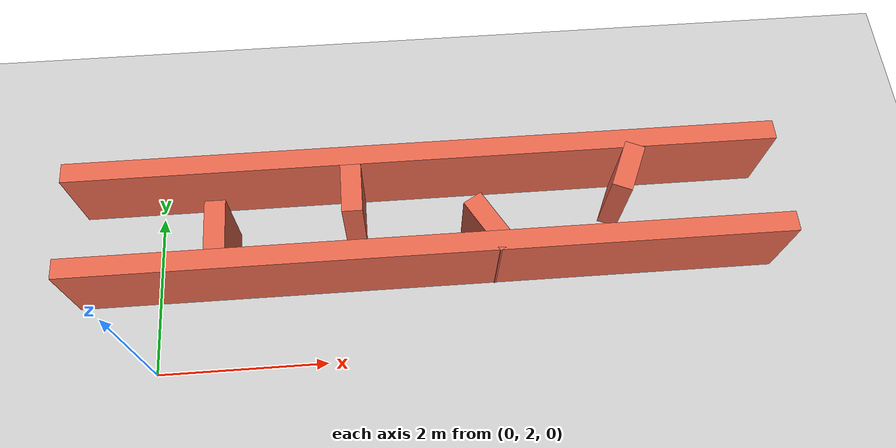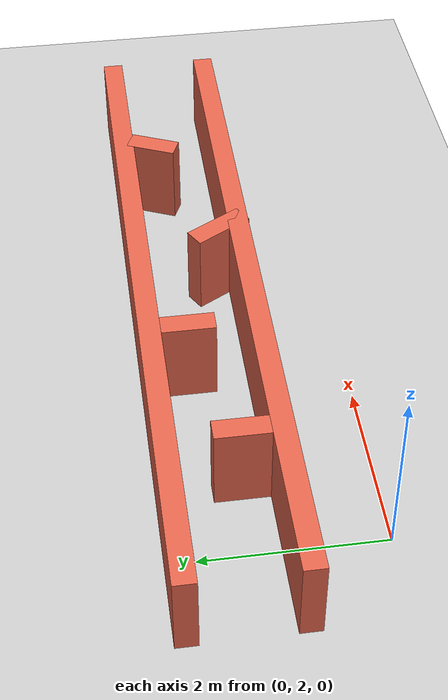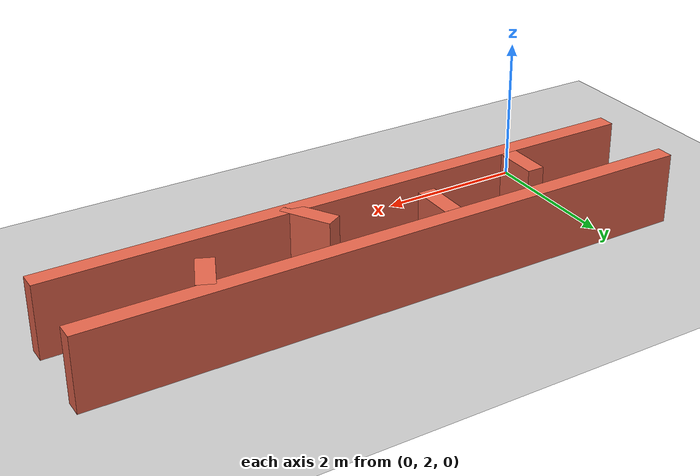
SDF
<sdf version="1.6">
 <world name="tb3_irs_corridor">
  <physics type="ode"><max_step_size>0.001</max_step_size><real_time_factor>1</real_time_factor></physics>
  <include><uri>model://sun</uri></include>
  <include><uri>model://ground_plane</uri></include>
  <model name="obs_0">
   <static>true</static>
   <pose>3.240 4.200 0.5 0 0 0.000</pose>
   <link name="link">
    <collision name="c"><geometry><box><size>8.400 0.240 1.0</size></box></geometry></collision>
    <visual name="v">
     <geometry><box><size>8.400 0.240 1.0</size></box></geometry>
     <material><ambient>0.9 0.4 0.3 1</ambient></material>
    </visual>
   </link>
  </model>
  <model name="obs_1">
   <static>true</static>
   <pose>3.240 3.000 0.5 0 0 0.000</pose>
   <link name="link">
    <collision name="c"><geometry><box><size>8.400 0.240 1.0</size></box></geometry></collision>
    <visual name="v">
     <geometry><box><size>8.400 0.240 1.0</size></box></geometry>
     <material><ambient>0.9 0.4 0.3 1</ambient></material>
    </visual>
   </link>
  </model>
  <model name="obs_2">
   <static>true</static>
   <pose>0.840 3.420 0.5 0 0 1.570</pose>
   <link name="link">
    <collision name="c"><geometry><box><size>0.600 0.240 1.0</size></box></geometry></collision>
    <visual name="v">
     <geometry><box><size>0.600 0.240 1.0</size></box></geometry>
     <material><ambient>0.9 0.4 0.3 1</ambient></material>
    </visual>
   </link>
  </model>
  <model name="obs_3">
   <static>true</static>
   <pose>2.400 3.780 0.5 0 0 1.570</pose>
   <link name="link">
    <collision name="c"><geometry><box><size>0.600 0.240 1.0</size></box></geometry></collision>
    <visual name="v">
     <geometry><box><size>0.600 0.240 1.0</size></box></geometry>
     <material><ambient>0.9 0.4 0.3 1</ambient></material>
    </visual>
   </link>
  </model>
  <model name="obs_4">
   <static>true</static>
   <pose>3.960 3.240 0.5 0 0 2.100</pose>
   <link name="link">
    <collision name="c"><geometry><box><size>0.720 0.240 1.0</size></box></geometry></collision>
    <visual name="v">
     <geometry><box><size>0.720 0.240 1.0</size></box></geometry>
     <material><ambient>0.9 0.4 0.3 1</ambient></material>
    </visual>
   </link>
  </model>
  <model name="obs_5">
   <static>true</static>
   <pose>5.640 3.840 0.5 0 0 4.300</pose>
   <link name="link">
    <collision name="c"><geometry><box><size>0.600 0.240 1.0</size></box></geometry></collision>
    <visual name="v">
     <geometry><box><size>0.600 0.240 1.0</size></box></geometry>
     <material><ambient>0.9 0.4 0.3 1</ambient></material>
    </visual>
   </link>
  </model>
 </world>
</sdf>
